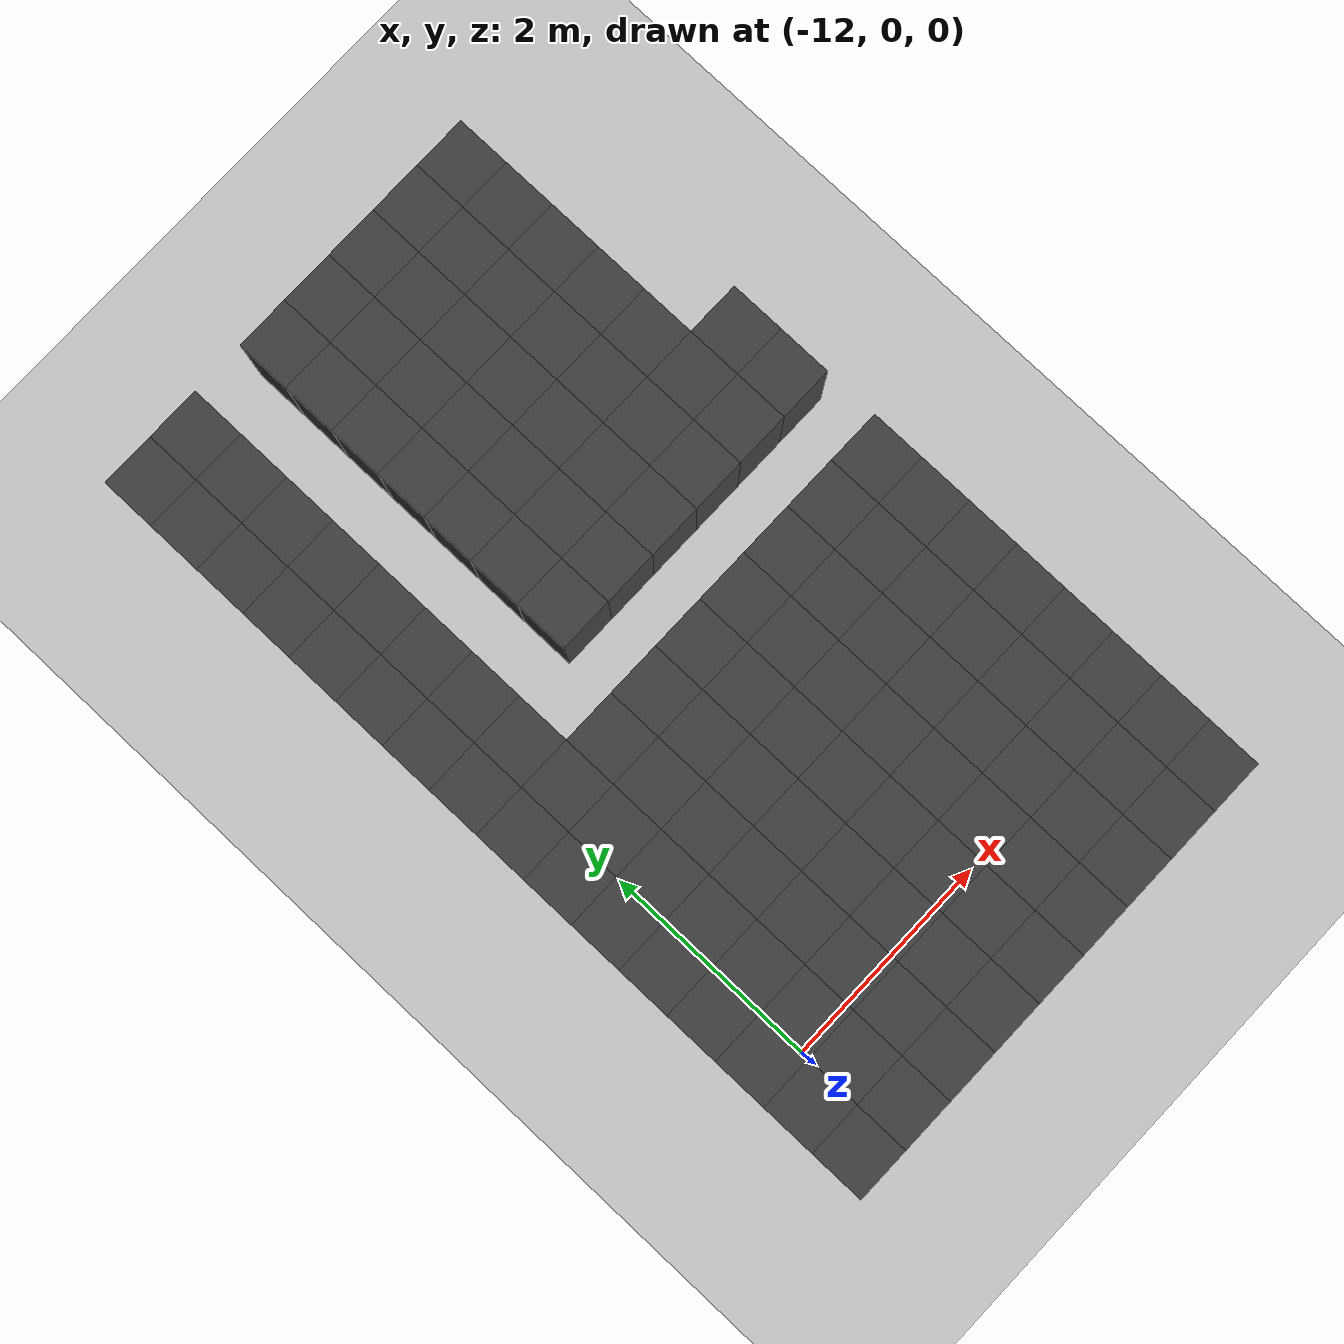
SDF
<sdf version="1.7">
 <world name="map_10764">
  <model name="ground_plane">
   <static>true</static>
   <link name="link">
    <collision name="collision">
     <geometry><plane><normal>0 0 1</normal><size>200 200</size></plane></geometry>
    </collision>
    <visual name="visual">
     <geometry><plane><normal>0 0 1</normal><size>200 200</size></plane></geometry>
     <material><ambient>0.8 0.8 0.8 1</ambient><diffuse>0.8 0.8 0.8 1</diffuse></material>
    </visual>
   </link>
  </model>
  <model name="maze_environment">
   <static>true</static>
   <link name="wall_495">
    <pose>-12.250 6.750 0.500 0 0 0</pose>
    <collision name="col"><geometry><box><size>0.5 0.5 1.0</size></box></geometry></collision>
    <visual name="vis">
     <geometry><box><size>0.5 0.5 1.0</size></box></geometry>
     <material><ambient>0.15 0.15 0.15 1</ambient><diffuse>0.25 0.25 0.25 1</diffuse></material>
    </visual>
   </link>
   <link name="wall_496">
    <pose>-11.750 6.750 0.500 0 0 0</pose>
    <collision name="col"><geometry><box><size>0.5 0.5 1.0</size></box></geometry></collision>
    <visual name="vis">
     <geometry><box><size>0.5 0.5 1.0</size></box></geometry>
     <material><ambient>0.15 0.15 0.15 1</ambient><diffuse>0.25 0.25 0.25 1</diffuse></material>
    </visual>
   </link>
   <link name="wall_497">
    <pose>-10.750 6.750 0.500 0 0 0</pose>
    <collision name="col"><geometry><box><size>0.5 0.5 1.0</size></box></geometry></collision>
    <visual name="vis">
     <geometry><box><size>0.5 0.5 1.0</size></box></geometry>
     <material><ambient>0.15 0.15 0.15 1</ambient><diffuse>0.25 0.25 0.25 1</diffuse></material>
    </visual>
   </link>
   <link name="wall_498">
    <pose>-10.250 6.750 0.500 0 0 0</pose>
    <collision name="col"><geometry><box><size>0.5 0.5 1.0</size></box></geometry></collision>
    <visual name="vis">
     <geometry><box><size>0.5 0.5 1.0</size></box></geometry>
     <material><ambient>0.15 0.15 0.15 1</ambient><diffuse>0.25 0.25 0.25 1</diffuse></material>
    </visual>
   </link>
   <link name="wall_499">
    <pose>-9.750 6.750 0.500 0 0 0</pose>
    <collision name="col"><geometry><box><size>0.5 0.5 1.0</size></box></geometry></collision>
    <visual name="vis">
     <geometry><box><size>0.5 0.5 1.0</size></box></geometry>
     <material><ambient>0.15 0.15 0.15 1</ambient><diffuse>0.25 0.25 0.25 1</diffuse></material>
    </visual>
   </link>
   <link name="wall_500">
    <pose>-9.250 6.750 0.500 0 0 0</pose>
    <collision name="col"><geometry><box><size>0.5 0.5 1.0</size></box></geometry></collision>
    <visual name="vis">
     <geometry><box><size>0.5 0.5 1.0</size></box></geometry>
     <material><ambient>0.15 0.15 0.15 1</ambient><diffuse>0.25 0.25 0.25 1</diffuse></material>
    </visual>
   </link>
   <link name="wall_501">
    <pose>-8.750 6.750 0.500 0 0 0</pose>
    <collision name="col"><geometry><box><size>0.5 0.5 1.0</size></box></geometry></collision>
    <visual name="vis">
     <geometry><box><size>0.5 0.5 1.0</size></box></geometry>
     <material><ambient>0.15 0.15 0.15 1</ambient><diffuse>0.25 0.25 0.25 1</diffuse></material>
    </visual>
   </link>
   <link name="wall_543">
    <pose>-12.250 6.250 0.500 0 0 0</pose>
    <collision name="col"><geometry><box><size>0.5 0.5 1.0</size></box></geometry></collision>
    <visual name="vis">
     <geometry><box><size>0.5 0.5 1.0</size></box></geometry>
     <material><ambient>0.15 0.15 0.15 1</ambient><diffuse>0.25 0.25 0.25 1</diffuse></material>
    </visual>
   </link>
   <link name="wall_544">
    <pose>-11.750 6.250 0.500 0 0 0</pose>
    <collision name="col"><geometry><box><size>0.5 0.5 1.0</size></box></geometry></collision>
    <visual name="vis">
     <geometry><box><size>0.5 0.5 1.0</size></box></geometry>
     <material><ambient>0.15 0.15 0.15 1</ambient><diffuse>0.25 0.25 0.25 1</diffuse></material>
    </visual>
   </link>
   <link name="wall_545">
    <pose>-10.750 6.250 0.500 0 0 0</pose>
    <collision name="col"><geometry><box><size>0.5 0.5 1.0</size></box></geometry></collision>
    <visual name="vis">
     <geometry><box><size>0.5 0.5 1.0</size></box></geometry>
     <material><ambient>0.15 0.15 0.15 1</ambient><diffuse>0.25 0.25 0.25 1</diffuse></material>
    </visual>
   </link>
   <link name="wall_546">
    <pose>-10.250 6.250 0.500 0 0 0</pose>
    <collision name="col"><geometry><box><size>0.5 0.5 1.0</size></box></geometry></collision>
    <visual name="vis">
     <geometry><box><size>0.5 0.5 1.0</size></box></geometry>
     <material><ambient>0.15 0.15 0.15 1</ambient><diffuse>0.25 0.25 0.25 1</diffuse></material>
    </visual>
   </link>
   <link name="wall_547">
    <pose>-9.750 6.250 0.500 0 0 0</pose>
    <collision name="col"><geometry><box><size>0.5 0.5 1.0</size></box></geometry></collision>
    <visual name="vis">
     <geometry><box><size>0.5 0.5 1.0</size></box></geometry>
     <material><ambient>0.15 0.15 0.15 1</ambient><diffuse>0.25 0.25 0.25 1</diffuse></material>
    </visual>
   </link>
   <link name="wall_548">
    <pose>-9.250 6.250 0.500 0 0 0</pose>
    <collision name="col"><geometry><box><size>0.5 0.5 1.0</size></box></geometry></collision>
    <visual name="vis">
     <geometry><box><size>0.5 0.5 1.0</size></box></geometry>
     <material><ambient>0.15 0.15 0.15 1</ambient><diffuse>0.25 0.25 0.25 1</diffuse></material>
    </visual>
   </link>
   <link name="wall_549">
    <pose>-8.750 6.250 0.500 0 0 0</pose>
    <collision name="col"><geometry><box><size>0.5 0.5 1.0</size></box></geometry></collision>
    <visual name="vis">
     <geometry><box><size>0.5 0.5 1.0</size></box></geometry>
     <material><ambient>0.15 0.15 0.15 1</ambient><diffuse>0.25 0.25 0.25 1</diffuse></material>
    </visual>
   </link>
   <link name="wall_591">
    <pose>-12.250 5.750 0.500 0 0 0</pose>
    <collision name="col"><geometry><box><size>0.5 0.5 1.0</size></box></geometry></collision>
    <visual name="vis">
     <geometry><box><size>0.5 0.5 1.0</size></box></geometry>
     <material><ambient>0.15 0.15 0.15 1</ambient><diffuse>0.25 0.25 0.25 1</diffuse></material>
    </visual>
   </link>
   <link name="wall_592">
    <pose>-11.750 5.750 0.500 0 0 0</pose>
    <collision name="col"><geometry><box><size>0.5 0.5 1.0</size></box></geometry></collision>
    <visual name="vis">
     <geometry><box><size>0.5 0.5 1.0</size></box></geometry>
     <material><ambient>0.15 0.15 0.15 1</ambient><diffuse>0.25 0.25 0.25 1</diffuse></material>
    </visual>
   </link>
   <link name="wall_593">
    <pose>-10.750 5.750 0.500 0 0 0</pose>
    <collision name="col"><geometry><box><size>0.5 0.5 1.0</size></box></geometry></collision>
    <visual name="vis">
     <geometry><box><size>0.5 0.5 1.0</size></box></geometry>
     <material><ambient>0.15 0.15 0.15 1</ambient><diffuse>0.25 0.25 0.25 1</diffuse></material>
    </visual>
   </link>
   <link name="wall_594">
    <pose>-10.250 5.750 0.500 0 0 0</pose>
    <collision name="col"><geometry><box><size>0.5 0.5 1.0</size></box></geometry></collision>
    <visual name="vis">
     <geometry><box><size>0.5 0.5 1.0</size></box></geometry>
     <material><ambient>0.15 0.15 0.15 1</ambient><diffuse>0.25 0.25 0.25 1</diffuse></material>
    </visual>
   </link>
   <link name="wall_595">
    <pose>-9.750 5.750 0.500 0 0 0</pose>
    <collision name="col"><geometry><box><size>0.5 0.5 1.0</size></box></geometry></collision>
    <visual name="vis">
     <geometry><box><size>0.5 0.5 1.0</size></box></geometry>
     <material><ambient>0.15 0.15 0.15 1</ambient><diffuse>0.25 0.25 0.25 1</diffuse></material>
    </visual>
   </link>
   <link name="wall_596">
    <pose>-9.250 5.750 0.500 0 0 0</pose>
    <collision name="col"><geometry><box><size>0.5 0.5 1.0</size></box></geometry></collision>
    <visual name="vis">
     <geometry><box><size>0.5 0.5 1.0</size></box></geometry>
     <material><ambient>0.15 0.15 0.15 1</ambient><diffuse>0.25 0.25 0.25 1</diffuse></material>
    </visual>
   </link>
   <link name="wall_597">
    <pose>-8.750 5.750 0.500 0 0 0</pose>
    <collision name="col"><geometry><box><size>0.5 0.5 1.0</size></box></geometry></collision>
    <visual name="vis">
     <geometry><box><size>0.5 0.5 1.0</size></box></geometry>
     <material><ambient>0.15 0.15 0.15 1</ambient><diffuse>0.25 0.25 0.25 1</diffuse></material>
    </visual>
   </link>
   <link name="wall_639">
    <pose>-12.250 5.250 0.500 0 0 0</pose>
    <collision name="col"><geometry><box><size>0.5 0.5 1.0</size></box></geometry></collision>
    <visual name="vis">
     <geometry><box><size>0.5 0.5 1.0</size></box></geometry>
     <material><ambient>0.15 0.15 0.15 1</ambient><diffuse>0.25 0.25 0.25 1</diffuse></material>
    </visual>
   </link>
   <link name="wall_640">
    <pose>-11.750 5.250 0.500 0 0 0</pose>
    <collision name="col"><geometry><box><size>0.5 0.5 1.0</size></box></geometry></collision>
    <visual name="vis">
     <geometry><box><size>0.5 0.5 1.0</size></box></geometry>
     <material><ambient>0.15 0.15 0.15 1</ambient><diffuse>0.25 0.25 0.25 1</diffuse></material>
    </visual>
   </link>
   <link name="wall_641">
    <pose>-10.750 5.250 0.500 0 0 0</pose>
    <collision name="col"><geometry><box><size>0.5 0.5 1.0</size></box></geometry></collision>
    <visual name="vis">
     <geometry><box><size>0.5 0.5 1.0</size></box></geometry>
     <material><ambient>0.15 0.15 0.15 1</ambient><diffuse>0.25 0.25 0.25 1</diffuse></material>
    </visual>
   </link>
   <link name="wall_642">
    <pose>-10.250 5.250 0.500 0 0 0</pose>
    <collision name="col"><geometry><box><size>0.5 0.5 1.0</size></box></geometry></collision>
    <visual name="vis">
     <geometry><box><size>0.5 0.5 1.0</size></box></geometry>
     <material><ambient>0.15 0.15 0.15 1</ambient><diffuse>0.25 0.25 0.25 1</diffuse></material>
    </visual>
   </link>
   <link name="wall_643">
    <pose>-9.750 5.250 0.500 0 0 0</pose>
    <collision name="col"><geometry><box><size>0.5 0.5 1.0</size></box></geometry></collision>
    <visual name="vis">
     <geometry><box><size>0.5 0.5 1.0</size></box></geometry>
     <material><ambient>0.15 0.15 0.15 1</ambient><diffuse>0.25 0.25 0.25 1</diffuse></material>
    </visual>
   </link>
   <link name="wall_644">
    <pose>-9.250 5.250 0.500 0 0 0</pose>
    <collision name="col"><geometry><box><size>0.5 0.5 1.0</size></box></geometry></collision>
    <visual name="vis">
     <geometry><box><size>0.5 0.5 1.0</size></box></geometry>
     <material><ambient>0.15 0.15 0.15 1</ambient><diffuse>0.25 0.25 0.25 1</diffuse></material>
    </visual>
   </link>
   <link name="wall_645">
    <pose>-8.750 5.250 0.500 0 0 0</pose>
    <collision name="col"><geometry><box><size>0.5 0.5 1.0</size></box></geometry></collision>
    <visual name="vis">
     <geometry><box><size>0.5 0.5 1.0</size></box></geometry>
     <material><ambient>0.15 0.15 0.15 1</ambient><diffuse>0.25 0.25 0.25 1</diffuse></material>
    </visual>
   </link>
   <link name="wall_687">
    <pose>-12.250 4.750 0.500 0 0 0</pose>
    <collision name="col"><geometry><box><size>0.5 0.5 1.0</size></box></geometry></collision>
    <visual name="vis">
     <geometry><box><size>0.5 0.5 1.0</size></box></geometry>
     <material><ambient>0.15 0.15 0.15 1</ambient><diffuse>0.25 0.25 0.25 1</diffuse></material>
    </visual>
   </link>
   <link name="wall_688">
    <pose>-11.750 4.750 0.500 0 0 0</pose>
    <collision name="col"><geometry><box><size>0.5 0.5 1.0</size></box></geometry></collision>
    <visual name="vis">
     <geometry><box><size>0.5 0.5 1.0</size></box></geometry>
     <material><ambient>0.15 0.15 0.15 1</ambient><diffuse>0.25 0.25 0.25 1</diffuse></material>
    </visual>
   </link>
   <link name="wall_689">
    <pose>-10.750 4.750 0.500 0 0 0</pose>
    <collision name="col"><geometry><box><size>0.5 0.5 1.0</size></box></geometry></collision>
    <visual name="vis">
     <geometry><box><size>0.5 0.5 1.0</size></box></geometry>
     <material><ambient>0.15 0.15 0.15 1</ambient><diffuse>0.25 0.25 0.25 1</diffuse></material>
    </visual>
   </link>
   <link name="wall_690">
    <pose>-10.250 4.750 0.500 0 0 0</pose>
    <collision name="col"><geometry><box><size>0.5 0.5 1.0</size></box></geometry></collision>
    <visual name="vis">
     <geometry><box><size>0.5 0.5 1.0</size></box></geometry>
     <material><ambient>0.15 0.15 0.15 1</ambient><diffuse>0.25 0.25 0.25 1</diffuse></material>
    </visual>
   </link>
   <link name="wall_691">
    <pose>-9.750 4.750 0.500 0 0 0</pose>
    <collision name="col"><geometry><box><size>0.5 0.5 1.0</size></box></geometry></collision>
    <visual name="vis">
     <geometry><box><size>0.5 0.5 1.0</size></box></geometry>
     <material><ambient>0.15 0.15 0.15 1</ambient><diffuse>0.25 0.25 0.25 1</diffuse></material>
    </visual>
   </link>
   <link name="wall_692">
    <pose>-9.250 4.750 0.500 0 0 0</pose>
    <collision name="col"><geometry><box><size>0.5 0.5 1.0</size></box></geometry></collision>
    <visual name="vis">
     <geometry><box><size>0.5 0.5 1.0</size></box></geometry>
     <material><ambient>0.15 0.15 0.15 1</ambient><diffuse>0.25 0.25 0.25 1</diffuse></material>
    </visual>
   </link>
   <link name="wall_693">
    <pose>-8.750 4.750 0.500 0 0 0</pose>
    <collision name="col"><geometry><box><size>0.5 0.5 1.0</size></box></geometry></collision>
    <visual name="vis">
     <geometry><box><size>0.5 0.5 1.0</size></box></geometry>
     <material><ambient>0.15 0.15 0.15 1</ambient><diffuse>0.25 0.25 0.25 1</diffuse></material>
    </visual>
   </link>
   <link name="wall_735">
    <pose>-12.250 4.250 0.500 0 0 0</pose>
    <collision name="col"><geometry><box><size>0.5 0.5 1.0</size></box></geometry></collision>
    <visual name="vis">
     <geometry><box><size>0.5 0.5 1.0</size></box></geometry>
     <material><ambient>0.15 0.15 0.15 1</ambient><diffuse>0.25 0.25 0.25 1</diffuse></material>
    </visual>
   </link>
   <link name="wall_736">
    <pose>-11.750 4.250 0.500 0 0 0</pose>
    <collision name="col"><geometry><box><size>0.5 0.5 1.0</size></box></geometry></collision>
    <visual name="vis">
     <geometry><box><size>0.5 0.5 1.0</size></box></geometry>
     <material><ambient>0.15 0.15 0.15 1</ambient><diffuse>0.25 0.25 0.25 1</diffuse></material>
    </visual>
   </link>
   <link name="wall_737">
    <pose>-10.750 4.250 0.500 0 0 0</pose>
    <collision name="col"><geometry><box><size>0.5 0.5 1.0</size></box></geometry></collision>
    <visual name="vis">
     <geometry><box><size>0.5 0.5 1.0</size></box></geometry>
     <material><ambient>0.15 0.15 0.15 1</ambient><diffuse>0.25 0.25 0.25 1</diffuse></material>
    </visual>
   </link>
   <link name="wall_738">
    <pose>-10.250 4.250 0.500 0 0 0</pose>
    <collision name="col"><geometry><box><size>0.5 0.5 1.0</size></box></geometry></collision>
    <visual name="vis">
     <geometry><box><size>0.5 0.5 1.0</size></box></geometry>
     <material><ambient>0.15 0.15 0.15 1</ambient><diffuse>0.25 0.25 0.25 1</diffuse></material>
    </visual>
   </link>
   <link name="wall_739">
    <pose>-9.750 4.250 0.500 0 0 0</pose>
    <collision name="col"><geometry><box><size>0.5 0.5 1.0</size></box></geometry></collision>
    <visual name="vis">
     <geometry><box><size>0.5 0.5 1.0</size></box></geometry>
     <material><ambient>0.15 0.15 0.15 1</ambient><diffuse>0.25 0.25 0.25 1</diffuse></material>
    </visual>
   </link>
   <link name="wall_740">
    <pose>-9.250 4.250 0.500 0 0 0</pose>
    <collision name="col"><geometry><box><size>0.5 0.5 1.0</size></box></geometry></collision>
    <visual name="vis">
     <geometry><box><size>0.5 0.5 1.0</size></box></geometry>
     <material><ambient>0.15 0.15 0.15 1</ambient><diffuse>0.25 0.25 0.25 1</diffuse></material>
    </visual>
   </link>
   <link name="wall_741">
    <pose>-8.750 4.250 0.500 0 0 0</pose>
    <collision name="col"><geometry><box><size>0.5 0.5 1.0</size></box></geometry></collision>
    <visual name="vis">
     <geometry><box><size>0.5 0.5 1.0</size></box></geometry>
     <material><ambient>0.15 0.15 0.15 1</ambient><diffuse>0.25 0.25 0.25 1</diffuse></material>
    </visual>
   </link>
   <link name="wall_742">
    <pose>-8.250 4.250 0.500 0 0 0</pose>
    <collision name="col"><geometry><box><size>0.5 0.5 1.0</size></box></geometry></collision>
    <visual name="vis">
     <geometry><box><size>0.5 0.5 1.0</size></box></geometry>
     <material><ambient>0.15 0.15 0.15 1</ambient><diffuse>0.25 0.25 0.25 1</diffuse></material>
    </visual>
   </link>
   <link name="wall_773">
    <pose>-12.250 3.750 0.500 0 0 0</pose>
    <collision name="col"><geometry><box><size>0.5 0.5 1.0</size></box></geometry></collision>
    <visual name="vis">
     <geometry><box><size>0.5 0.5 1.0</size></box></geometry>
     <material><ambient>0.15 0.15 0.15 1</ambient><diffuse>0.25 0.25 0.25 1</diffuse></material>
    </visual>
   </link>
   <link name="wall_774">
    <pose>-11.750 3.750 0.500 0 0 0</pose>
    <collision name="col"><geometry><box><size>0.5 0.5 1.0</size></box></geometry></collision>
    <visual name="vis">
     <geometry><box><size>0.5 0.5 1.0</size></box></geometry>
     <material><ambient>0.15 0.15 0.15 1</ambient><diffuse>0.25 0.25 0.25 1</diffuse></material>
    </visual>
   </link>
   <link name="wall_775">
    <pose>-10.750 3.750 0.500 0 0 0</pose>
    <collision name="col"><geometry><box><size>0.5 0.5 1.0</size></box></geometry></collision>
    <visual name="vis">
     <geometry><box><size>0.5 0.5 1.0</size></box></geometry>
     <material><ambient>0.15 0.15 0.15 1</ambient><diffuse>0.25 0.25 0.25 1</diffuse></material>
    </visual>
   </link>
   <link name="wall_776">
    <pose>-10.250 3.750 0.500 0 0 0</pose>
    <collision name="col"><geometry><box><size>0.5 0.5 1.0</size></box></geometry></collision>
    <visual name="vis">
     <geometry><box><size>0.5 0.5 1.0</size></box></geometry>
     <material><ambient>0.15 0.15 0.15 1</ambient><diffuse>0.25 0.25 0.25 1</diffuse></material>
    </visual>
   </link>
   <link name="wall_777">
    <pose>-9.750 3.750 0.500 0 0 0</pose>
    <collision name="col"><geometry><box><size>0.5 0.5 1.0</size></box></geometry></collision>
    <visual name="vis">
     <geometry><box><size>0.5 0.5 1.0</size></box></geometry>
     <material><ambient>0.15 0.15 0.15 1</ambient><diffuse>0.25 0.25 0.25 1</diffuse></material>
    </visual>
   </link>
   <link name="wall_778">
    <pose>-9.250 3.750 0.500 0 0 0</pose>
    <collision name="col"><geometry><box><size>0.5 0.5 1.0</size></box></geometry></collision>
    <visual name="vis">
     <geometry><box><size>0.5 0.5 1.0</size></box></geometry>
     <material><ambient>0.15 0.15 0.15 1</ambient><diffuse>0.25 0.25 0.25 1</diffuse></material>
    </visual>
   </link>
   <link name="wall_779">
    <pose>-8.750 3.750 0.500 0 0 0</pose>
    <collision name="col"><geometry><box><size>0.5 0.5 1.0</size></box></geometry></collision>
    <visual name="vis">
     <geometry><box><size>0.5 0.5 1.0</size></box></geometry>
     <material><ambient>0.15 0.15 0.15 1</ambient><diffuse>0.25 0.25 0.25 1</diffuse></material>
    </visual>
   </link>
   <link name="wall_780">
    <pose>-8.250 3.750 0.500 0 0 0</pose>
    <collision name="col"><geometry><box><size>0.5 0.5 1.0</size></box></geometry></collision>
    <visual name="vis">
     <geometry><box><size>0.5 0.5 1.0</size></box></geometry>
     <material><ambient>0.15 0.15 0.15 1</ambient><diffuse>0.25 0.25 0.25 1</diffuse></material>
    </visual>
   </link>
   <link name="wall_806">
    <pose>-12.250 3.250 0.500 0 0 0</pose>
    <collision name="col"><geometry><box><size>0.5 0.5 1.0</size></box></geometry></collision>
    <visual name="vis">
     <geometry><box><size>0.5 0.5 1.0</size></box></geometry>
     <material><ambient>0.15 0.15 0.15 1</ambient><diffuse>0.25 0.25 0.25 1</diffuse></material>
    </visual>
   </link>
   <link name="wall_807">
    <pose>-11.750 3.250 0.500 0 0 0</pose>
    <collision name="col"><geometry><box><size>0.5 0.5 1.0</size></box></geometry></collision>
    <visual name="vis">
     <geometry><box><size>0.5 0.5 1.0</size></box></geometry>
     <material><ambient>0.15 0.15 0.15 1</ambient><diffuse>0.25 0.25 0.25 1</diffuse></material>
    </visual>
   </link>
   <link name="wall_830">
    <pose>-12.250 2.750 0.500 0 0 0</pose>
    <collision name="col"><geometry><box><size>0.5 0.5 1.0</size></box></geometry></collision>
    <visual name="vis">
     <geometry><box><size>0.5 0.5 1.0</size></box></geometry>
     <material><ambient>0.15 0.15 0.15 1</ambient><diffuse>0.25 0.25 0.25 1</diffuse></material>
    </visual>
   </link>
   <link name="wall_831">
    <pose>-11.750 2.750 0.500 0 0 0</pose>
    <collision name="col"><geometry><box><size>0.5 0.5 1.0</size></box></geometry></collision>
    <visual name="vis">
     <geometry><box><size>0.5 0.5 1.0</size></box></geometry>
     <material><ambient>0.15 0.15 0.15 1</ambient><diffuse>0.25 0.25 0.25 1</diffuse></material>
    </visual>
   </link>
   <link name="wall_832">
    <pose>-11.250 2.750 0.500 0 0 0</pose>
    <collision name="col"><geometry><box><size>0.5 0.5 1.0</size></box></geometry></collision>
    <visual name="vis">
     <geometry><box><size>0.5 0.5 1.0</size></box></geometry>
     <material><ambient>0.15 0.15 0.15 1</ambient><diffuse>0.25 0.25 0.25 1</diffuse></material>
    </visual>
   </link>
   <link name="wall_833">
    <pose>-10.750 2.750 0.500 0 0 0</pose>
    <collision name="col"><geometry><box><size>0.5 0.5 1.0</size></box></geometry></collision>
    <visual name="vis">
     <geometry><box><size>0.5 0.5 1.0</size></box></geometry>
     <material><ambient>0.15 0.15 0.15 1</ambient><diffuse>0.25 0.25 0.25 1</diffuse></material>
    </visual>
   </link>
   <link name="wall_834">
    <pose>-10.250 2.750 0.500 0 0 0</pose>
    <collision name="col"><geometry><box><size>0.5 0.5 1.0</size></box></geometry></collision>
    <visual name="vis">
     <geometry><box><size>0.5 0.5 1.0</size></box></geometry>
     <material><ambient>0.15 0.15 0.15 1</ambient><diffuse>0.25 0.25 0.25 1</diffuse></material>
    </visual>
   </link>
   <link name="wall_835">
    <pose>-9.750 2.750 0.500 0 0 0</pose>
    <collision name="col"><geometry><box><size>0.5 0.5 1.0</size></box></geometry></collision>
    <visual name="vis">
     <geometry><box><size>0.5 0.5 1.0</size></box></geometry>
     <material><ambient>0.15 0.15 0.15 1</ambient><diffuse>0.25 0.25 0.25 1</diffuse></material>
    </visual>
   </link>
   <link name="wall_836">
    <pose>-9.250 2.750 0.500 0 0 0</pose>
    <collision name="col"><geometry><box><size>0.5 0.5 1.0</size></box></geometry></collision>
    <visual name="vis">
     <geometry><box><size>0.5 0.5 1.0</size></box></geometry>
     <material><ambient>0.15 0.15 0.15 1</ambient><diffuse>0.25 0.25 0.25 1</diffuse></material>
    </visual>
   </link>
   <link name="wall_837">
    <pose>-8.750 2.750 0.500 0 0 0</pose>
    <collision name="col"><geometry><box><size>0.5 0.5 1.0</size></box></geometry></collision>
    <visual name="vis">
     <geometry><box><size>0.5 0.5 1.0</size></box></geometry>
     <material><ambient>0.15 0.15 0.15 1</ambient><diffuse>0.25 0.25 0.25 1</diffuse></material>
    </visual>
   </link>
   <link name="wall_838">
    <pose>-8.250 2.750 0.500 0 0 0</pose>
    <collision name="col"><geometry><box><size>0.5 0.5 1.0</size></box></geometry></collision>
    <visual name="vis">
     <geometry><box><size>0.5 0.5 1.0</size></box></geometry>
     <material><ambient>0.15 0.15 0.15 1</ambient><diffuse>0.25 0.25 0.25 1</diffuse></material>
    </visual>
   </link>
   <link name="wall_852">
    <pose>-12.250 2.250 0.500 0 0 0</pose>
    <collision name="col"><geometry><box><size>0.5 0.5 1.0</size></box></geometry></collision>
    <visual name="vis">
     <geometry><box><size>0.5 0.5 1.0</size></box></geometry>
     <material><ambient>0.15 0.15 0.15 1</ambient><diffuse>0.25 0.25 0.25 1</diffuse></material>
    </visual>
   </link>
   <link name="wall_853">
    <pose>-11.750 2.250 0.500 0 0 0</pose>
    <collision name="col"><geometry><box><size>0.5 0.5 1.0</size></box></geometry></collision>
    <visual name="vis">
     <geometry><box><size>0.5 0.5 1.0</size></box></geometry>
     <material><ambient>0.15 0.15 0.15 1</ambient><diffuse>0.25 0.25 0.25 1</diffuse></material>
    </visual>
   </link>
   <link name="wall_854">
    <pose>-11.250 2.250 0.500 0 0 0</pose>
    <collision name="col"><geometry><box><size>0.5 0.5 1.0</size></box></geometry></collision>
    <visual name="vis">
     <geometry><box><size>0.5 0.5 1.0</size></box></geometry>
     <material><ambient>0.15 0.15 0.15 1</ambient><diffuse>0.25 0.25 0.25 1</diffuse></material>
    </visual>
   </link>
   <link name="wall_855">
    <pose>-10.750 2.250 0.500 0 0 0</pose>
    <collision name="col"><geometry><box><size>0.5 0.5 1.0</size></box></geometry></collision>
    <visual name="vis">
     <geometry><box><size>0.5 0.5 1.0</size></box></geometry>
     <material><ambient>0.15 0.15 0.15 1</ambient><diffuse>0.25 0.25 0.25 1</diffuse></material>
    </visual>
   </link>
   <link name="wall_856">
    <pose>-10.250 2.250 0.500 0 0 0</pose>
    <collision name="col"><geometry><box><size>0.5 0.5 1.0</size></box></geometry></collision>
    <visual name="vis">
     <geometry><box><size>0.5 0.5 1.0</size></box></geometry>
     <material><ambient>0.15 0.15 0.15 1</ambient><diffuse>0.25 0.25 0.25 1</diffuse></material>
    </visual>
   </link>
   <link name="wall_857">
    <pose>-9.750 2.250 0.500 0 0 0</pose>
    <collision name="col"><geometry><box><size>0.5 0.5 1.0</size></box></geometry></collision>
    <visual name="vis">
     <geometry><box><size>0.5 0.5 1.0</size></box></geometry>
     <material><ambient>0.15 0.15 0.15 1</ambient><diffuse>0.25 0.25 0.25 1</diffuse></material>
    </visual>
   </link>
   <link name="wall_858">
    <pose>-9.250 2.250 0.500 0 0 0</pose>
    <collision name="col"><geometry><box><size>0.5 0.5 1.0</size></box></geometry></collision>
    <visual name="vis">
     <geometry><box><size>0.5 0.5 1.0</size></box></geometry>
     <material><ambient>0.15 0.15 0.15 1</ambient><diffuse>0.25 0.25 0.25 1</diffuse></material>
    </visual>
   </link>
   <link name="wall_859">
    <pose>-8.750 2.250 0.500 0 0 0</pose>
    <collision name="col"><geometry><box><size>0.5 0.5 1.0</size></box></geometry></collision>
    <visual name="vis">
     <geometry><box><size>0.5 0.5 1.0</size></box></geometry>
     <material><ambient>0.15 0.15 0.15 1</ambient><diffuse>0.25 0.25 0.25 1</diffuse></material>
    </visual>
   </link>
   <link name="wall_860">
    <pose>-8.250 2.250 0.500 0 0 0</pose>
    <collision name="col"><geometry><box><size>0.5 0.5 1.0</size></box></geometry></collision>
    <visual name="vis">
     <geometry><box><size>0.5 0.5 1.0</size></box></geometry>
     <material><ambient>0.15 0.15 0.15 1</ambient><diffuse>0.25 0.25 0.25 1</diffuse></material>
    </visual>
   </link>
   <link name="wall_884">
    <pose>-12.250 1.750 0.500 0 0 0</pose>
    <collision name="col"><geometry><box><size>0.5 0.5 1.0</size></box></geometry></collision>
    <visual name="vis">
     <geometry><box><size>0.5 0.5 1.0</size></box></geometry>
     <material><ambient>0.15 0.15 0.15 1</ambient><diffuse>0.25 0.25 0.25 1</diffuse></material>
    </visual>
   </link>
   <link name="wall_885">
    <pose>-11.750 1.750 0.500 0 0 0</pose>
    <collision name="col"><geometry><box><size>0.5 0.5 1.0</size></box></geometry></collision>
    <visual name="vis">
     <geometry><box><size>0.5 0.5 1.0</size></box></geometry>
     <material><ambient>0.15 0.15 0.15 1</ambient><diffuse>0.25 0.25 0.25 1</diffuse></material>
    </visual>
   </link>
   <link name="wall_886">
    <pose>-11.250 1.750 0.500 0 0 0</pose>
    <collision name="col"><geometry><box><size>0.5 0.5 1.0</size></box></geometry></collision>
    <visual name="vis">
     <geometry><box><size>0.5 0.5 1.0</size></box></geometry>
     <material><ambient>0.15 0.15 0.15 1</ambient><diffuse>0.25 0.25 0.25 1</diffuse></material>
    </visual>
   </link>
   <link name="wall_887">
    <pose>-10.750 1.750 0.500 0 0 0</pose>
    <collision name="col"><geometry><box><size>0.5 0.5 1.0</size></box></geometry></collision>
    <visual name="vis">
     <geometry><box><size>0.5 0.5 1.0</size></box></geometry>
     <material><ambient>0.15 0.15 0.15 1</ambient><diffuse>0.25 0.25 0.25 1</diffuse></material>
    </visual>
   </link>
   <link name="wall_888">
    <pose>-10.250 1.750 0.500 0 0 0</pose>
    <collision name="col"><geometry><box><size>0.5 0.5 1.0</size></box></geometry></collision>
    <visual name="vis">
     <geometry><box><size>0.5 0.5 1.0</size></box></geometry>
     <material><ambient>0.15 0.15 0.15 1</ambient><diffuse>0.25 0.25 0.25 1</diffuse></material>
    </visual>
   </link>
   <link name="wall_889">
    <pose>-9.750 1.750 0.500 0 0 0</pose>
    <collision name="col"><geometry><box><size>0.5 0.5 1.0</size></box></geometry></collision>
    <visual name="vis">
     <geometry><box><size>0.5 0.5 1.0</size></box></geometry>
     <material><ambient>0.15 0.15 0.15 1</ambient><diffuse>0.25 0.25 0.25 1</diffuse></material>
    </visual>
   </link>
   <link name="wall_890">
    <pose>-9.250 1.750 0.500 0 0 0</pose>
    <collision name="col"><geometry><box><size>0.5 0.5 1.0</size></box></geometry></collision>
    <visual name="vis">
     <geometry><box><size>0.5 0.5 1.0</size></box></geometry>
     <material><ambient>0.15 0.15 0.15 1</ambient><diffuse>0.25 0.25 0.25 1</diffuse></material>
    </visual>
   </link>
   <link name="wall_891">
    <pose>-8.750 1.750 0.500 0 0 0</pose>
    <collision name="col"><geometry><box><size>0.5 0.5 1.0</size></box></geometry></collision>
    <visual name="vis">
     <geometry><box><size>0.5 0.5 1.0</size></box></geometry>
     <material><ambient>0.15 0.15 0.15 1</ambient><diffuse>0.25 0.25 0.25 1</diffuse></material>
    </visual>
   </link>
   <link name="wall_892">
    <pose>-8.250 1.750 0.500 0 0 0</pose>
    <collision name="col"><geometry><box><size>0.5 0.5 1.0</size></box></geometry></collision>
    <visual name="vis">
     <geometry><box><size>0.5 0.5 1.0</size></box></geometry>
     <material><ambient>0.15 0.15 0.15 1</ambient><diffuse>0.25 0.25 0.25 1</diffuse></material>
    </visual>
   </link>
   <link name="wall_916">
    <pose>-12.250 1.250 0.500 0 0 0</pose>
    <collision name="col"><geometry><box><size>0.5 0.5 1.0</size></box></geometry></collision>
    <visual name="vis">
     <geometry><box><size>0.5 0.5 1.0</size></box></geometry>
     <material><ambient>0.15 0.15 0.15 1</ambient><diffuse>0.25 0.25 0.25 1</diffuse></material>
    </visual>
   </link>
   <link name="wall_917">
    <pose>-11.750 1.250 0.500 0 0 0</pose>
    <collision name="col"><geometry><box><size>0.5 0.5 1.0</size></box></geometry></collision>
    <visual name="vis">
     <geometry><box><size>0.5 0.5 1.0</size></box></geometry>
     <material><ambient>0.15 0.15 0.15 1</ambient><diffuse>0.25 0.25 0.25 1</diffuse></material>
    </visual>
   </link>
   <link name="wall_918">
    <pose>-11.250 1.250 0.500 0 0 0</pose>
    <collision name="col"><geometry><box><size>0.5 0.5 1.0</size></box></geometry></collision>
    <visual name="vis">
     <geometry><box><size>0.5 0.5 1.0</size></box></geometry>
     <material><ambient>0.15 0.15 0.15 1</ambient><diffuse>0.25 0.25 0.25 1</diffuse></material>
    </visual>
   </link>
   <link name="wall_919">
    <pose>-10.750 1.250 0.500 0 0 0</pose>
    <collision name="col"><geometry><box><size>0.5 0.5 1.0</size></box></geometry></collision>
    <visual name="vis">
     <geometry><box><size>0.5 0.5 1.0</size></box></geometry>
     <material><ambient>0.15 0.15 0.15 1</ambient><diffuse>0.25 0.25 0.25 1</diffuse></material>
    </visual>
   </link>
   <link name="wall_920">
    <pose>-10.250 1.250 0.500 0 0 0</pose>
    <collision name="col"><geometry><box><size>0.5 0.5 1.0</size></box></geometry></collision>
    <visual name="vis">
     <geometry><box><size>0.5 0.5 1.0</size></box></geometry>
     <material><ambient>0.15 0.15 0.15 1</ambient><diffuse>0.25 0.25 0.25 1</diffuse></material>
    </visual>
   </link>
   <link name="wall_921">
    <pose>-9.750 1.250 0.500 0 0 0</pose>
    <collision name="col"><geometry><box><size>0.5 0.5 1.0</size></box></geometry></collision>
    <visual name="vis">
     <geometry><box><size>0.5 0.5 1.0</size></box></geometry>
     <material><ambient>0.15 0.15 0.15 1</ambient><diffuse>0.25 0.25 0.25 1</diffuse></material>
    </visual>
   </link>
   <link name="wall_922">
    <pose>-9.250 1.250 0.500 0 0 0</pose>
    <collision name="col"><geometry><box><size>0.5 0.5 1.0</size></box></geometry></collision>
    <visual name="vis">
     <geometry><box><size>0.5 0.5 1.0</size></box></geometry>
     <material><ambient>0.15 0.15 0.15 1</ambient><diffuse>0.25 0.25 0.25 1</diffuse></material>
    </visual>
   </link>
   <link name="wall_923">
    <pose>-8.750 1.250 0.500 0 0 0</pose>
    <collision name="col"><geometry><box><size>0.5 0.5 1.0</size></box></geometry></collision>
    <visual name="vis">
     <geometry><box><size>0.5 0.5 1.0</size></box></geometry>
     <material><ambient>0.15 0.15 0.15 1</ambient><diffuse>0.25 0.25 0.25 1</diffuse></material>
    </visual>
   </link>
   <link name="wall_924">
    <pose>-8.250 1.250 0.500 0 0 0</pose>
    <collision name="col"><geometry><box><size>0.5 0.5 1.0</size></box></geometry></collision>
    <visual name="vis">
     <geometry><box><size>0.5 0.5 1.0</size></box></geometry>
     <material><ambient>0.15 0.15 0.15 1</ambient><diffuse>0.25 0.25 0.25 1</diffuse></material>
    </visual>
   </link>
   <link name="wall_948">
    <pose>-12.250 0.750 0.500 0 0 0</pose>
    <collision name="col"><geometry><box><size>0.5 0.5 1.0</size></box></geometry></collision>
    <visual name="vis">
     <geometry><box><size>0.5 0.5 1.0</size></box></geometry>
     <material><ambient>0.15 0.15 0.15 1</ambient><diffuse>0.25 0.25 0.25 1</diffuse></material>
    </visual>
   </link>
   <link name="wall_949">
    <pose>-11.750 0.750 0.500 0 0 0</pose>
    <collision name="col"><geometry><box><size>0.5 0.5 1.0</size></box></geometry></collision>
    <visual name="vis">
     <geometry><box><size>0.5 0.5 1.0</size></box></geometry>
     <material><ambient>0.15 0.15 0.15 1</ambient><diffuse>0.25 0.25 0.25 1</diffuse></material>
    </visual>
   </link>
   <link name="wall_950">
    <pose>-11.250 0.750 0.500 0 0 0</pose>
    <collision name="col"><geometry><box><size>0.5 0.5 1.0</size></box></geometry></collision>
    <visual name="vis">
     <geometry><box><size>0.5 0.5 1.0</size></box></geometry>
     <material><ambient>0.15 0.15 0.15 1</ambient><diffuse>0.25 0.25 0.25 1</diffuse></material>
    </visual>
   </link>
   <link name="wall_951">
    <pose>-10.750 0.750 0.500 0 0 0</pose>
    <collision name="col"><geometry><box><size>0.5 0.5 1.0</size></box></geometry></collision>
    <visual name="vis">
     <geometry><box><size>0.5 0.5 1.0</size></box></geometry>
     <material><ambient>0.15 0.15 0.15 1</ambient><diffuse>0.25 0.25 0.25 1</diffuse></material>
    </visual>
   </link>
   <link name="wall_952">
    <pose>-10.250 0.750 0.500 0 0 0</pose>
    <collision name="col"><geometry><box><size>0.5 0.5 1.0</size></box></geometry></collision>
    <visual name="vis">
     <geometry><box><size>0.5 0.5 1.0</size></box></geometry>
     <material><ambient>0.15 0.15 0.15 1</ambient><diffuse>0.25 0.25 0.25 1</diffuse></material>
    </visual>
   </link>
   <link name="wall_953">
    <pose>-9.750 0.750 0.500 0 0 0</pose>
    <collision name="col"><geometry><box><size>0.5 0.5 1.0</size></box></geometry></collision>
    <visual name="vis">
     <geometry><box><size>0.5 0.5 1.0</size></box></geometry>
     <material><ambient>0.15 0.15 0.15 1</ambient><diffuse>0.25 0.25 0.25 1</diffuse></material>
    </visual>
   </link>
   <link name="wall_954">
    <pose>-9.250 0.750 0.500 0 0 0</pose>
    <collision name="col"><geometry><box><size>0.5 0.5 1.0</size></box></geometry></collision>
    <visual name="vis">
     <geometry><box><size>0.5 0.5 1.0</size></box></geometry>
     <material><ambient>0.15 0.15 0.15 1</ambient><diffuse>0.25 0.25 0.25 1</diffuse></material>
    </visual>
   </link>
   <link name="wall_955">
    <pose>-8.750 0.750 0.500 0 0 0</pose>
    <collision name="col"><geometry><box><size>0.5 0.5 1.0</size></box></geometry></collision>
    <visual name="vis">
     <geometry><box><size>0.5 0.5 1.0</size></box></geometry>
     <material><ambient>0.15 0.15 0.15 1</ambient><diffuse>0.25 0.25 0.25 1</diffuse></material>
    </visual>
   </link>
   <link name="wall_956">
    <pose>-8.250 0.750 0.500 0 0 0</pose>
    <collision name="col"><geometry><box><size>0.5 0.5 1.0</size></box></geometry></collision>
    <visual name="vis">
     <geometry><box><size>0.5 0.5 1.0</size></box></geometry>
     <material><ambient>0.15 0.15 0.15 1</ambient><diffuse>0.25 0.25 0.25 1</diffuse></material>
    </visual>
   </link>
   <link name="wall_983">
    <pose>-12.250 0.250 0.500 0 0 0</pose>
    <collision name="col"><geometry><box><size>0.5 0.5 1.0</size></box></geometry></collision>
    <visual name="vis">
     <geometry><box><size>0.5 0.5 1.0</size></box></geometry>
     <material><ambient>0.15 0.15 0.15 1</ambient><diffuse>0.25 0.25 0.25 1</diffuse></material>
    </visual>
   </link>
   <link name="wall_984">
    <pose>-11.750 0.250 0.500 0 0 0</pose>
    <collision name="col"><geometry><box><size>0.5 0.5 1.0</size></box></geometry></collision>
    <visual name="vis">
     <geometry><box><size>0.5 0.5 1.0</size></box></geometry>
     <material><ambient>0.15 0.15 0.15 1</ambient><diffuse>0.25 0.25 0.25 1</diffuse></material>
    </visual>
   </link>
   <link name="wall_985">
    <pose>-11.250 0.250 0.500 0 0 0</pose>
    <collision name="col"><geometry><box><size>0.5 0.5 1.0</size></box></geometry></collision>
    <visual name="vis">
     <geometry><box><size>0.5 0.5 1.0</size></box></geometry>
     <material><ambient>0.15 0.15 0.15 1</ambient><diffuse>0.25 0.25 0.25 1</diffuse></material>
    </visual>
   </link>
   <link name="wall_986">
    <pose>-10.750 0.250 0.500 0 0 0</pose>
    <collision name="col"><geometry><box><size>0.5 0.5 1.0</size></box></geometry></collision>
    <visual name="vis">
     <geometry><box><size>0.5 0.5 1.0</size></box></geometry>
     <material><ambient>0.15 0.15 0.15 1</ambient><diffuse>0.25 0.25 0.25 1</diffuse></material>
    </visual>
   </link>
   <link name="wall_987">
    <pose>-10.250 0.250 0.500 0 0 0</pose>
    <collision name="col"><geometry><box><size>0.5 0.5 1.0</size></box></geometry></collision>
    <visual name="vis">
     <geometry><box><size>0.5 0.5 1.0</size></box></geometry>
     <material><ambient>0.15 0.15 0.15 1</ambient><diffuse>0.25 0.25 0.25 1</diffuse></material>
    </visual>
   </link>
   <link name="wall_988">
    <pose>-9.750 0.250 0.500 0 0 0</pose>
    <collision name="col"><geometry><box><size>0.5 0.5 1.0</size></box></geometry></collision>
    <visual name="vis">
     <geometry><box><size>0.5 0.5 1.0</size></box></geometry>
     <material><ambient>0.15 0.15 0.15 1</ambient><diffuse>0.25 0.25 0.25 1</diffuse></material>
    </visual>
   </link>
   <link name="wall_989">
    <pose>-9.250 0.250 0.500 0 0 0</pose>
    <collision name="col"><geometry><box><size>0.5 0.5 1.0</size></box></geometry></collision>
    <visual name="vis">
     <geometry><box><size>0.5 0.5 1.0</size></box></geometry>
     <material><ambient>0.15 0.15 0.15 1</ambient><diffuse>0.25 0.25 0.25 1</diffuse></material>
    </visual>
   </link>
   <link name="wall_990">
    <pose>-8.750 0.250 0.500 0 0 0</pose>
    <collision name="col"><geometry><box><size>0.5 0.5 1.0</size></box></geometry></collision>
    <visual name="vis">
     <geometry><box><size>0.5 0.5 1.0</size></box></geometry>
     <material><ambient>0.15 0.15 0.15 1</ambient><diffuse>0.25 0.25 0.25 1</diffuse></material>
    </visual>
   </link>
   <link name="wall_991">
    <pose>-8.250 0.250 0.500 0 0 0</pose>
    <collision name="col"><geometry><box><size>0.5 0.5 1.0</size></box></geometry></collision>
    <visual name="vis">
     <geometry><box><size>0.5 0.5 1.0</size></box></geometry>
     <material><ambient>0.15 0.15 0.15 1</ambient><diffuse>0.25 0.25 0.25 1</diffuse></material>
    </visual>
   </link>
   <link name="wall_1023">
    <pose>-12.250 -0.250 0.500 0 0 0</pose>
    <collision name="col"><geometry><box><size>0.5 0.5 1.0</size></box></geometry></collision>
    <visual name="vis">
     <geometry><box><size>0.5 0.5 1.0</size></box></geometry>
     <material><ambient>0.15 0.15 0.15 1</ambient><diffuse>0.25 0.25 0.25 1</diffuse></material>
    </visual>
   </link>
   <link name="wall_1024">
    <pose>-11.750 -0.250 0.500 0 0 0</pose>
    <collision name="col"><geometry><box><size>0.5 0.5 1.0</size></box></geometry></collision>
    <visual name="vis">
     <geometry><box><size>0.5 0.5 1.0</size></box></geometry>
     <material><ambient>0.15 0.15 0.15 1</ambient><diffuse>0.25 0.25 0.25 1</diffuse></material>
    </visual>
   </link>
   <link name="wall_1025">
    <pose>-11.250 -0.250 0.500 0 0 0</pose>
    <collision name="col"><geometry><box><size>0.5 0.5 1.0</size></box></geometry></collision>
    <visual name="vis">
     <geometry><box><size>0.5 0.5 1.0</size></box></geometry>
     <material><ambient>0.15 0.15 0.15 1</ambient><diffuse>0.25 0.25 0.25 1</diffuse></material>
    </visual>
   </link>
   <link name="wall_1026">
    <pose>-10.750 -0.250 0.500 0 0 0</pose>
    <collision name="col"><geometry><box><size>0.5 0.5 1.0</size></box></geometry></collision>
    <visual name="vis">
     <geometry><box><size>0.5 0.5 1.0</size></box></geometry>
     <material><ambient>0.15 0.15 0.15 1</ambient><diffuse>0.25 0.25 0.25 1</diffuse></material>
    </visual>
   </link>
   <link name="wall_1027">
    <pose>-10.250 -0.250 0.500 0 0 0</pose>
    <collision name="col"><geometry><box><size>0.5 0.5 1.0</size></box></geometry></collision>
    <visual name="vis">
     <geometry><box><size>0.5 0.5 1.0</size></box></geometry>
     <material><ambient>0.15 0.15 0.15 1</ambient><diffuse>0.25 0.25 0.25 1</diffuse></material>
    </visual>
   </link>
   <link name="wall_1028">
    <pose>-9.750 -0.250 0.500 0 0 0</pose>
    <collision name="col"><geometry><box><size>0.5 0.5 1.0</size></box></geometry></collision>
    <visual name="vis">
     <geometry><box><size>0.5 0.5 1.0</size></box></geometry>
     <material><ambient>0.15 0.15 0.15 1</ambient><diffuse>0.25 0.25 0.25 1</diffuse></material>
    </visual>
   </link>
   <link name="wall_1029">
    <pose>-9.250 -0.250 0.500 0 0 0</pose>
    <collision name="col"><geometry><box><size>0.5 0.5 1.0</size></box></geometry></collision>
    <visual name="vis">
     <geometry><box><size>0.5 0.5 1.0</size></box></geometry>
     <material><ambient>0.15 0.15 0.15 1</ambient><diffuse>0.25 0.25 0.25 1</diffuse></material>
    </visual>
   </link>
   <link name="wall_1030">
    <pose>-8.750 -0.250 0.500 0 0 0</pose>
    <collision name="col"><geometry><box><size>0.5 0.5 1.0</size></box></geometry></collision>
    <visual name="vis">
     <geometry><box><size>0.5 0.5 1.0</size></box></geometry>
     <material><ambient>0.15 0.15 0.15 1</ambient><diffuse>0.25 0.25 0.25 1</diffuse></material>
    </visual>
   </link>
   <link name="wall_1031">
    <pose>-8.250 -0.250 0.500 0 0 0</pose>
    <collision name="col"><geometry><box><size>0.5 0.5 1.0</size></box></geometry></collision>
    <visual name="vis">
     <geometry><box><size>0.5 0.5 1.0</size></box></geometry>
     <material><ambient>0.15 0.15 0.15 1</ambient><diffuse>0.25 0.25 0.25 1</diffuse></material>
    </visual>
   </link>
   <link name="wall_1063">
    <pose>-12.250 -0.750 0.500 0 0 0</pose>
    <collision name="col"><geometry><box><size>0.5 0.5 1.0</size></box></geometry></collision>
    <visual name="vis">
     <geometry><box><size>0.5 0.5 1.0</size></box></geometry>
     <material><ambient>0.15 0.15 0.15 1</ambient><diffuse>0.25 0.25 0.25 1</diffuse></material>
    </visual>
   </link>
   <link name="wall_1064">
    <pose>-11.750 -0.750 0.500 0 0 0</pose>
    <collision name="col"><geometry><box><size>0.5 0.5 1.0</size></box></geometry></collision>
    <visual name="vis">
     <geometry><box><size>0.5 0.5 1.0</size></box></geometry>
     <material><ambient>0.15 0.15 0.15 1</ambient><diffuse>0.25 0.25 0.25 1</diffuse></material>
    </visual>
   </link>
   <link name="wall_1065">
    <pose>-11.250 -0.750 0.500 0 0 0</pose>
    <collision name="col"><geometry><box><size>0.5 0.5 1.0</size></box></geometry></collision>
    <visual name="vis">
     <geometry><box><size>0.5 0.5 1.0</size></box></geometry>
     <material><ambient>0.15 0.15 0.15 1</ambient><diffuse>0.25 0.25 0.25 1</diffuse></material>
    </visual>
   </link>
   <link name="wall_1066">
    <pose>-10.750 -0.750 0.500 0 0 0</pose>
    <collision name="col"><geometry><box><size>0.5 0.5 1.0</size></box></geometry></collision>
    <visual name="vis">
     <geometry><box><size>0.5 0.5 1.0</size></box></geometry>
     <material><ambient>0.15 0.15 0.15 1</ambient><diffuse>0.25 0.25 0.25 1</diffuse></material>
    </visual>
   </link>
   <link name="wall_1067">
    <pose>-10.250 -0.750 0.500 0 0 0</pose>
    <collision name="col"><geometry><box><size>0.5 0.5 1.0</size></box></geometry></collision>
    <visual name="vis">
     <geometry><box><size>0.5 0.5 1.0</size></box></geometry>
     <material><ambient>0.15 0.15 0.15 1</ambient><diffuse>0.25 0.25 0.25 1</diffuse></material>
    </visual>
   </link>
   <link name="wall_1068">
    <pose>-9.750 -0.750 0.500 0 0 0</pose>
    <collision name="col"><geometry><box><size>0.5 0.5 1.0</size></box></geometry></collision>
    <visual name="vis">
     <geometry><box><size>0.5 0.5 1.0</size></box></geometry>
     <material><ambient>0.15 0.15 0.15 1</ambient><diffuse>0.25 0.25 0.25 1</diffuse></material>
    </visual>
   </link>
   <link name="wall_1069">
    <pose>-9.250 -0.750 0.500 0 0 0</pose>
    <collision name="col"><geometry><box><size>0.5 0.5 1.0</size></box></geometry></collision>
    <visual name="vis">
     <geometry><box><size>0.5 0.5 1.0</size></box></geometry>
     <material><ambient>0.15 0.15 0.15 1</ambient><diffuse>0.25 0.25 0.25 1</diffuse></material>
    </visual>
   </link>
   <link name="wall_1070">
    <pose>-8.750 -0.750 0.500 0 0 0</pose>
    <collision name="col"><geometry><box><size>0.5 0.5 1.0</size></box></geometry></collision>
    <visual name="vis">
     <geometry><box><size>0.5 0.5 1.0</size></box></geometry>
     <material><ambient>0.15 0.15 0.15 1</ambient><diffuse>0.25 0.25 0.25 1</diffuse></material>
    </visual>
   </link>
   <link name="wall_1071">
    <pose>-8.250 -0.750 0.500 0 0 0</pose>
    <collision name="col"><geometry><box><size>0.5 0.5 1.0</size></box></geometry></collision>
    <visual name="vis">
     <geometry><box><size>0.5 0.5 1.0</size></box></geometry>
     <material><ambient>0.15 0.15 0.15 1</ambient><diffuse>0.25 0.25 0.25 1</diffuse></material>
    </visual>
   </link>
  </model>
 </world>
</sdf>
